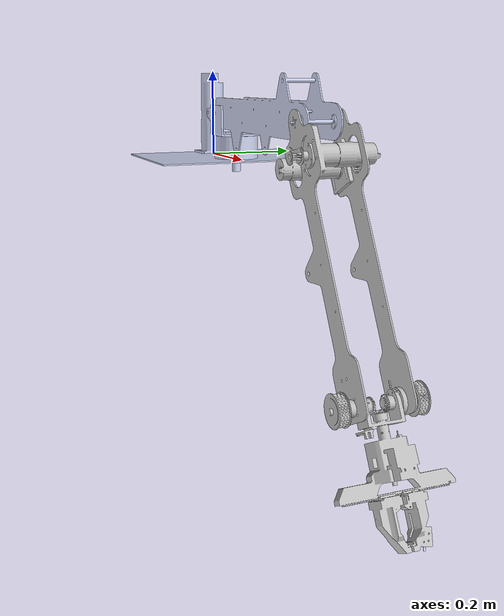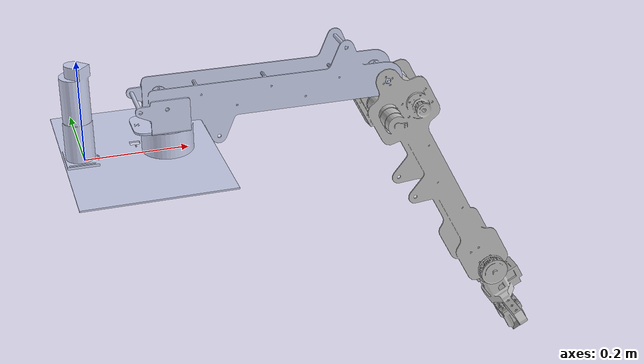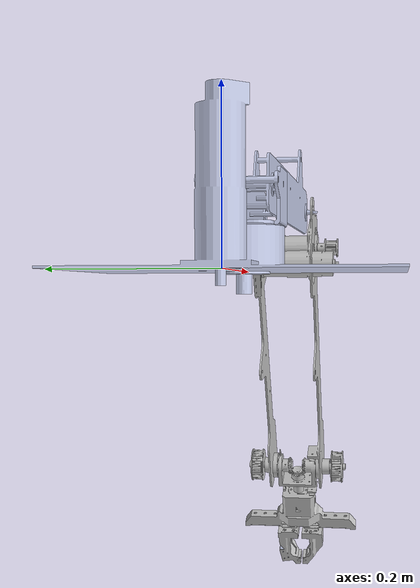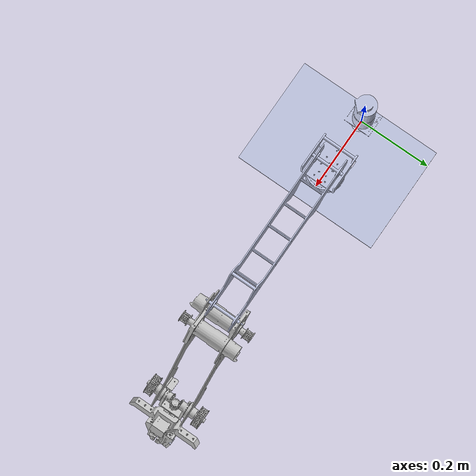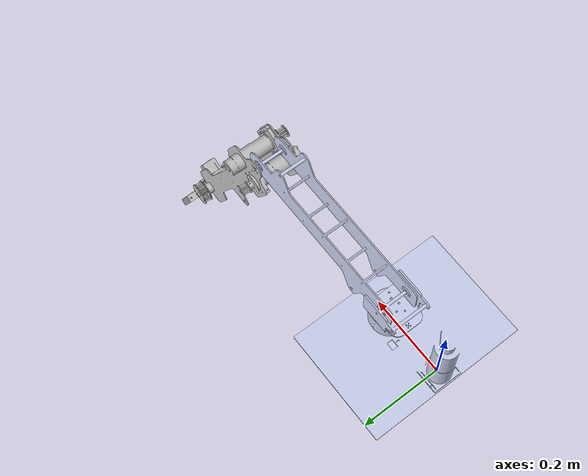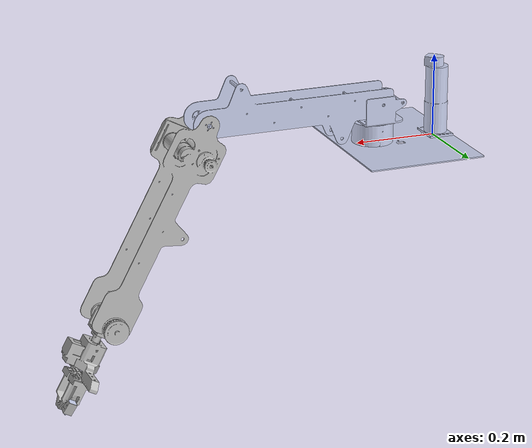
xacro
<?xml version="1.0"?>
<robot xmlns:xacro="http://www.ros.org/wiki/xacro" name="zero_arm_urdf">
    <xacro:arg name="initial_positions_file" default="initial_positions.yaml" />

    <!-- Import zero_arm_urdf urdf file -->
    <xacro:include filename="$(find zero_arm_urdf)/urdf/zero_arm_urdf.urdf" />

    <!-- Import control_xacro -->
    <xacro:include filename="zero_arm_urdf.ros2_control.xacro" />

    <xacro:zero_arm_urdf_ros2_control name="FakeSystem" initial_positions_file="$(arg initial_positions_file)"/>

</robot>

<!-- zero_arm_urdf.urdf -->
<robot
  name="zero_arm_urdf">
  <link
    name="base_link">
    <inertial>
      <origin
        xyz="0.0658257284419014 -0.000207866022929881 0.0479622408614532"
        rpy="0 0 0" />
      <mass
        value="0.971772873740423" />
      <inertia
        ixx="0.006084943050822"
        ixy="1.41809852052385E-06"
        ixz="-1.31018488364514E-05"
        iyy="0.00378269979771676"
        iyz="1.2979509131575E-05"
        izz="0.00748069186848877" />
    </inertial>
    <visual>
      <origin
        xyz="0 0 0"
        rpy="0 0 0" />
      <geometry>
        <mesh
          filename="package://zero_arm_urdf/meshes/base_link.STL" />
      </geometry>
      <material
        name="">
        <color
          rgba="0.792156862745098 0.819607843137255 0.933333333333333 1" />
      </material>
    </visual>
    <collision>
      <origin
        xyz="0 0 0"
        rpy="0 0 0" />
      <geometry>
        <mesh
          filename="package://zero_arm_urdf/meshes/base_link.STL" />
      </geometry>
    </collision>
  </link>
  <link
    name="link1">
    <inertial>
      <origin
        xyz="-0.00397025673957066 -0.0425742314422386 1.37090863266964E-06"
        rpy="0 0 0" />
      <mass
        value="0.234821575011378" />
      <inertia
        ixx="0.000247746565184449"
        ixy="2.82744814330891E-06"
        ixz="2.61132776099762E-09"
        iyy="0.000244853538800398"
        iyz="-1.3131238195509E-08"
        izz="0.000184528194453294" />
    </inertial>
    <visual>
      <origin
        xyz="0 0 0"
        rpy="0 0 0" />
      <geometry>
        <mesh
          filename="package://zero_arm_urdf/meshes/link1.STL" />
      </geometry>
      <material
        name="">
        <color
          rgba="0.792156862745098 0.819607843137255 0.933333333333333 1" />
      </material>
    </visual>
    <collision>
      <origin
        xyz="0 0 0"
        rpy="0 0 0" />
      <geometry>
        <mesh
          filename="package://zero_arm_urdf/meshes/link1.STL" />
      </geometry>
    </collision>
  </link>
  <joint
    name="joint1"
    type="revolute">
    <origin
      xyz="0.16 0 0"
      rpy="-1.5708 0 0" />
    <parent
      link="base_link" />
    <child
      link="link1" />
    <axis
      xyz="0 -1 0" />
    <limit
      lower="-3.0"
      upper="3.0"
      effort="200"
      velocity="1" />
  </joint>
  <link
    name="link2">
    <inertial>
      <origin
        xyz="0.220334053460024 0.000872969026101303 -2.77555756156289E-17"
        rpy="0 0 0" />
      <mass
        value="0.261954653215328" />
      <inertia
        ixx="0.000188707236359268"
        ixy="-0.000200063248022766"
        ixz="2.26000765066799E-19"
        iyy="0.00464878606453287"
        iyz="-1.58314299122513E-20"
        izz="0.00481819737388019" />
    </inertial>
    <visual>
      <origin
        xyz="0 0 0"
        rpy="0 0 0" />
      <geometry>
        <mesh
          filename="package://zero_arm_urdf/meshes/link2.STL" />
      </geometry>
      <material
        name="">
        <color
          rgba="0.792156862745098 0.819607843137255 0.933333333333333 1" />
      </material>
    </visual>
    <collision>
      <origin
        xyz="0 0 0"
        rpy="0 0 0" />
      <geometry>
        <mesh
          filename="package://zero_arm_urdf/meshes/link2.STL" />
      </geometry>
    </collision>
  </link>
  <joint
    name="joint2"
    type="revolute">
    <origin
      xyz="-0.006 -0.1055 0"
      rpy="3.1416 0 0" />
    <parent
      link="link1" />
    <child
      link="link2" />
    <axis
      xyz="0 0 1" />
    <limit
      lower="-0.1"
      upper="1.43"
      effort="200"
      velocity="1" />
  </joint>
  <link
    name="link3">
    <inertial>
      <origin
        xyz="0.30483853766749 -0.00144503350835333 -0.0164831721923893"
        rpy="0 0 0" />
      <mass
        value="0.488417816473279" />
      <inertia
        ixx="0.000321059705121818"
        ixy="-4.27633039477105E-06"
        ixz="4.86912251323769E-08"
        iyy="0.00673693203480663"
        iyz="-2.01359163353348E-08"
        izz="0.00693397263925434" />
    </inertial>
    <visual>
      <origin
        xyz="0 0 0"
        rpy="0 0 0" />
      <geometry>
        <mesh
          filename="package://zero_arm_urdf/meshes/link3.STL" />
      </geometry>
      <material
        name="">
        <color
          rgba="0.752941176470588 0.752941176470588 0.752941176470588 1" />
      </material>
    </visual>
    <collision>
      <origin
        xyz="0 0 0"
        rpy="0 0 0" />
      <geometry>
        <mesh
          filename="package://zero_arm_urdf/meshes/link3.STL" />
      </geometry>
    </collision>
  </link>
  <joint
    name="joint3"
    type="revolute">
    <origin
      xyz="0.438 0 0"
      rpy="0 0 0" />
    <parent
      link="link2" />
    <child
      link="link3" />
    <axis
      xyz="0 0 1" />
    <limit
      lower="-1.66"
      upper="-0.5"
      effort="200"
      velocity="1" />
  </joint>
  <link
    name="link4">
    <inertial>
      <origin
        xyz="0.00495433196508244 -6.20216963115386E-05 5.77115050062471E-05"
        rpy="0 0 0" />
      <mass
        value="0.445256597701024" />
      <inertia
        ixx="0.000127440338159421"
        ixy="2.55511769101157E-08"
        ixz="2.9920672788021E-08"
        iyy="0.000125423181252453"
        iyz="2.83533341223222E-08"
        izz="7.59794261694308E-05" />
    </inertial>
    <visual>
      <origin
        xyz="0 0 0"
        rpy="0 0 0" />
      <geometry>
        <mesh
          filename="package://zero_arm_urdf/meshes/link4.STL" />
      </geometry>
      <material
        name="">
        <color
          rgba="0.752941176470588 0.752941176470588 0.752941176470588 1" />
      </material>
    </visual>
    <collision>
      <origin
        xyz="0 0 0"
        rpy="0 0 0" />
      <geometry>
        <mesh
          filename="package://zero_arm_urdf/meshes/link4.STL" />
      </geometry>
    </collision>
  </link>
  <joint
    name="joint4"
    type="revolute">
    <origin
      xyz="0.525 0 0"
      rpy="0 0 0" />
    <parent
      link="link3" />
    <child
      link="link4" />
    <axis
      xyz="0 0 1" />
    <limit
      lower="-2"
      upper="2"
      effort="200"
      velocity="1" />
  </joint>
  <link
    name="link5">
    <inertial>
      <origin
        xyz="0.000245573438265645 0.010340330297018 0.0690052158718446"
        rpy="0 0 0" />
      <mass
        value="0.352114397652173" />
      <inertia
        ixx="0.000264513851496235"
        ixy="2.31737364753378E-07"
        ixz="-1.05215700699188E-06"
        iyy="0.000508317617337495"
        iyz="8.7496383808142E-06"
        izz="0.000490997704862073" />
    </inertial>
    <visual>
      <origin
        xyz="0 0 0"
        rpy="0 0 0" />
      <geometry>
        <mesh
          filename="package://zero_arm_urdf/meshes/link5.STL" />
      </geometry>
      <material
        name="">
        <color
          rgba="0.752941176470588 0.752941176470588 0.752941176470588 1" />
      </material>
    </visual>
    <collision>
      <origin
        xyz="0 0 0"
        rpy="0 0 0" />
      <geometry>
        <mesh
          filename="package://zero_arm_urdf/meshes/link5.STL" />
      </geometry>
    </collision>
  </link>
  <joint
    name="joint5"
    type="revolute">
    <origin
      xyz="0.0361 0 0"
      rpy="0 1.5708 0" />
    <parent
      link="link4" />
    <child
      link="link5" />
    <axis
      xyz="0 0 1" />
    <limit
      lower="-500.0"
      upper="500.0"
      effort="200"
      velocity="1" />
  </joint>
  <link
    name="right_finger">
    <inertial>
      <origin
        xyz="0.0215937628980724 0.000202849593494848 -0.0624186677218008"
        rpy="0 0 0" />
      <mass
        value="0.053241038188701" />
      <inertia
        ixx="3.33488752067218E-05"
        ixy="-1.8444368483651E-11"
        ixz="3.45813423510804E-06"
        iyy="3.16050413019731E-05"
        iyz="1.1407438006372E-08"
        izz="1.32352703654019E-05" />
    </inertial>
    <visual>
      <origin
        xyz="0 0 0"
        rpy="0 0 0" />
      <geometry>
        <mesh
          filename="package://zero_arm_urdf/meshes/right_finger.STL" />
      </geometry>
      <material
        name="">
        <color
          rgba="0.752941176470588 0.752941176470588 0.752941176470588 1" />
      </material>
    </visual>
    <collision>
      <origin
        xyz="0 0 0"
        rpy="0 0 0" />
      <geometry>
        <mesh
          filename="package://zero_arm_urdf/meshes/right_finger.STL" />
      </geometry>
    </collision>
  </link>
  <joint
    name="finger_joint1"
    type="prismatic">
    <origin
      xyz="0.002 0.00025625 0.20564"
      rpy="0 0 0" />
    <parent
      link="link5" />
    <child
      link="right_finger" />
    <axis
      xyz="1 0 0" />
    <limit
      lower="0"
      upper="0.0564"
      effort="100"
      velocity="3" />
  </joint>
  <link
    name="solenoid">
    <inertial>
      <origin
        xyz="2.4980018054066E-16 -2.77555756156289E-17 -0.0223514106905571"
        rpy="0 0 0" />
      <mass
        value="0.0112479645943005" />
      <inertia
        ixx="1.29768403052871E-06"
        ixy="1.03278892433719E-23"
        ixz="-4.16899028726726E-22"
        iyy="1.22700403052871E-06"
        iyz="5.4388397497731E-22"
        izz="6.734959291886E-07" />
    </inertial>
    <visual>
      <origin
        xyz="0 0 0"
        rpy="0 0 0" />
      <geometry>
        <mesh
          filename="package://zero_arm_urdf/meshes/solenoid.STL" />
      </geometry>
      <material
        name="">
        <color
          rgba="0.792156862745098 0.819607843137255 0.933333333333333 1" />
      </material>
    </visual>
    <collision>
      <origin
        xyz="0 0 0"
        rpy="0 0 0" />
      <geometry>
        <mesh
          filename="package://zero_arm_urdf/meshes/solenoid.STL" />
      </geometry>
    </collision>
  </link>
  <joint
    name="solenoid_joint"
    type="fixed">
    <origin
      xyz="0.026236 0 0.0039392"
      rpy="0 0.17453 3.1416" />
    <parent
      link="right_finger" />
    <child
      link="solenoid" />
    <axis
      xyz="0 0 0" />
  </joint>
  <link
    name="left_finger">
    <inertial>
      <origin
        xyz="0.0220125847239852 0.000188722118320002 -0.0621351163379389"
        rpy="0 0 0" />
      <mass
        value="0.0557852527831897" />
      <inertia
        ixx="3.18177178076056E-05"
        ixy="8.17133668202917E-21"
        ixz="3.57080613975233E-06"
        iyy="3.02026365485314E-05"
        iyz="2.09710323370774E-08"
        izz="1.33690917758008E-05" />
    </inertial>
    <visual>
      <origin
        xyz="0 0 0"
        rpy="0 0 0" />
      <geometry>
        <mesh
          filename="package://zero_arm_urdf/meshes/left_finger.STL" />
      </geometry>
      <material
        name="">
        <color
          rgba="0.752941176470588 0.752941176470588 0.752941176470588 1" />
      </material>
    </visual>
    <collision>
      <origin
        xyz="0 0 0"
        rpy="0 0 0" />
      <geometry>
        <mesh
          filename="package://zero_arm_urdf/meshes/left_finger.STL" />
      </geometry>
    </collision>
  </link>
  <joint
    name="finger_joint2"
    type="prismatic">
    <origin
      xyz="-0.002 0.00025625 0.20564"
      rpy="0 0 -3.1416" />
    <parent
      link="link5" />
    <child
      link="left_finger" />
    <axis
      xyz="1 0 0" />
    <limit
      lower="0"
      upper="0"
      effort="0"
      velocity="0" />
    <mimic
      joint="finger_joint1"
      multiplier="1"
      offset="0" />
  </joint>
</robot>
